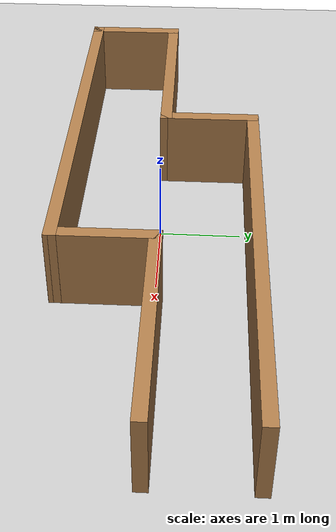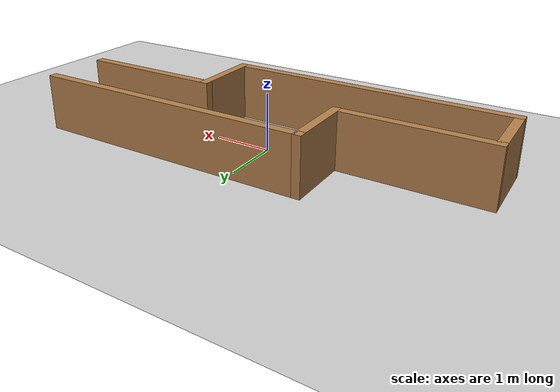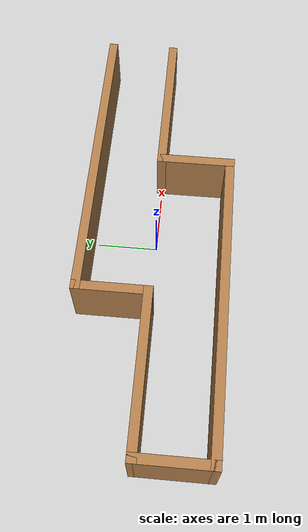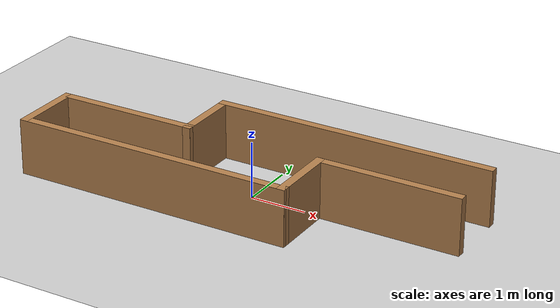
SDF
<sdf version="1.6">
 <world name="default">
  <light name="sun" type="directional">
   <pose>0 0 10 0 -0 0</pose>
   <diffuse>0.8 0.8 0.8 1</diffuse>
   <specular>0.2 0.2 0.2 1</specular>
   <attenuation>
    <range>1000</range>
    <constant>0.9</constant>
    <linear>0.01</linear>
    <quadratic>0.001</quadratic>
   </attenuation>
   <direction>-0.5 0.1 -0.9</direction>
  </light>
  <model name="ground_plane">
   <static>1</static>
   <link name="link">
    <collision name="collision">
     <geometry><plane><normal>0 0 1</normal><size>100 100</size></plane></geometry>
     <surface>
      <contact><collide_bitmask>65535</collide_bitmask></contact>
      <friction><ode><mu>100</mu><mu2>50</mu2></ode></friction>
     </surface>
    </collision>
    <visual name="visual">
     <cast_shadows>0</cast_shadows>
     <geometry><plane><normal>0 0 1</normal><size>100 100</size></plane></geometry>
     <material>
      <script><uri>file://media/materials/scripts/gazebo.material</uri><name>Gazebo/Grey</name></script>
     </material>
    </visual>
   </link>
  </model>
  <gravity>0 0 -9.8</gravity>
  <magnetic_field>6e-06 2.3e-05 -4.2e-05</magnetic_field>
  <atmosphere type="adiabatic"/>
  <physics name="default_physics" default="0" type="ode">
   <max_step_size>0.001</max_step_size>
   <real_time_factor>1</real_time_factor>
   <real_time_update_rate>1000</real_time_update_rate>
  </physics>
  <scene><ambient>0.4 0.4 0.4 1</ambient><background>0.7 0.7 0.7 1</background><shadows>1</shadows></scene>
  <audio><device>default</device></audio>
  <spherical_coordinates>
   <surface_model>EARTH_WGS84</surface_model>
   <latitude_deg>0</latitude_deg>
   <longitude_deg>0</longitude_deg>
   <elevation>0</elevation>
   <heading_deg>0</heading_deg>
  </spherical_coordinates>
  <model name="curbs_maze">
   <link name="Wall_0">
    <collision name="Wall_0_Collision">
     <geometry><box><size>1.29351 0.15 1</size></box></geometry>
     <pose>0 0 0.5 0 -0 0</pose>
    </collision>
    <visual name="Wall_0_Visual">
     <pose>0 0 0.5 0 -0 0</pose>
     <geometry><box><size>1.29351 0.15 1</size></box></geometry>
     <material>
      <script><uri>file://media/materials/scripts/gazebo.material</uri><name>Gazebo/Wood</name></script>
      <ambient>1 1 1 1</ambient>
     </material>
     <meta><layer>0</layer></meta>
    </visual>
    <pose>-3.71095 -0.562043 0 0 -0 1.5708</pose>
   </link>
   <link name="Wall_1">
    <collision name="Wall_1_Collision">
     <geometry><box><size>2.6271 0.15 1</size></box></geometry>
     <pose>0 0 0.5 0 -0 0</pose>
    </collision>
    <visual name="Wall_1_Visual">
     <pose>0 0 0.5 0 -0 0</pose>
     <geometry><box><size>2.6271 0.15 1</size></box></geometry>
     <material>
      <script><uri>file://media/materials/scripts/gazebo.material</uri><name>Gazebo/Wood</name></script>
      <ambient>1 1 1 1</ambient>
     </material>
     <meta><layer>0</layer></meta>
    </visual>
    <pose>-2.47245 0.012957 0 0 -0 0.002422</pose>
   </link>
   <link name="Wall_2">
    <collision name="Wall_2_Collision">
     <geometry><box><size>1.27435 0.15 1</size></box></geometry>
     <pose>0 0 0.5 0 -0 0</pose>
    </collision>
    <visual name="Wall_2_Visual">
     <pose>0 0 0.5 0 -0 0</pose>
     <geometry><box><size>1.27435 0.15 1</size></box></geometry>
     <material>
      <script><uri>file://media/materials/scripts/gazebo.material</uri><name>Gazebo/Wood</name></script>
      <ambient>1 1 1 1</ambient>
     </material>
     <meta><layer>0</layer></meta>
    </visual>
    <pose>-1.23395 0.577957 0 0 -0 1.5708</pose>
   </link>
   <link name="Wall_3">
    <collision name="Wall_3_Collision">
     <geometry><box><size>5.09452 0.15 1</size></box></geometry>
     <pose>0 0 0.5 0 -0 0</pose>
    </collision>
    <visual name="Wall_3_Visual">
     <pose>0 0 0.5 0 -0 0</pose>
     <geometry><box><size>5.09452 0.15 1</size></box></geometry>
     <material>
      <script><uri>file://media/materials/scripts/gazebo.material</uri><name>Gazebo/Wood</name></script>
      <ambient>1 1 1 1</ambient>
     </material>
     <meta><layer>0</layer></meta>
    </visual>
    <pose>1.23855 1.13996 0 0 -0 0</pose>
   </link>
   <link name="Wall_5">
    <collision name="Wall_5_Collision">
     <geometry><box><size>2.62227 0.15 1</size></box></geometry>
     <pose>0 0 0.5 0 -0 0</pose>
    </collision>
    <visual name="Wall_5_Visual">
     <pose>0 0 0.5 0 -0 0</pose>
     <geometry><box><size>2.62227 0.15 1</size></box></geometry>
     <material>
      <script><uri>file://media/materials/scripts/gazebo.material</uri><name>Gazebo/Wood</name></script>
      <ambient>1 1 1 1</ambient>
     </material>
     <meta><layer>0</layer></meta>
    </visual>
    <pose>2.47505 0.015957 0 0 -0 3.14159</pose>
   </link>
   <link name="Wall_6">
    <collision name="Wall_6_Collision">
     <geometry><box><size>1.30553 0.15 1</size></box></geometry>
     <pose>0 0 0.5 0 -0 0</pose>
    </collision>
    <visual name="Wall_6_Visual">
     <pose>0 0 0.5 0 -0 0</pose>
     <geometry><box><size>1.30553 0.15 1</size></box></geometry>
     <material>
      <script><uri>file://media/materials/scripts/gazebo.material</uri><name>Gazebo/Wood</name></script>
      <ambient>1 1 1 1</ambient>
     </material>
     <meta><layer>0</layer></meta>
    </visual>
    <pose>1.24005 -0.562043 0 0 -0 -1.56907</pose>
   </link>
   <link name="Wall_7">
    <collision name="Wall_7_Collision">
     <geometry><box><size>5.1021 0.15 1</size></box></geometry>
     <pose>0 0 0.5 0 -0 0</pose>
    </collision>
    <visual name="Wall_7_Visual">
     <pose>0 0 0.5 0 -0 0</pose>
     <geometry><box><size>5.1021 0.15 1</size></box></geometry>
     <material>
      <script><uri>file://media/materials/scripts/gazebo.material</uri><name>Gazebo/Wood</name></script>
      <ambient>1 1 1 1</ambient>
     </material>
     <meta><layer>0</layer></meta>
    </visual>
    <pose>-1.23495 -1.13704 0 0 -0 3.14038</pose>
   </link>
   <static>1</static>
  </model>
 </world>
</sdf>
